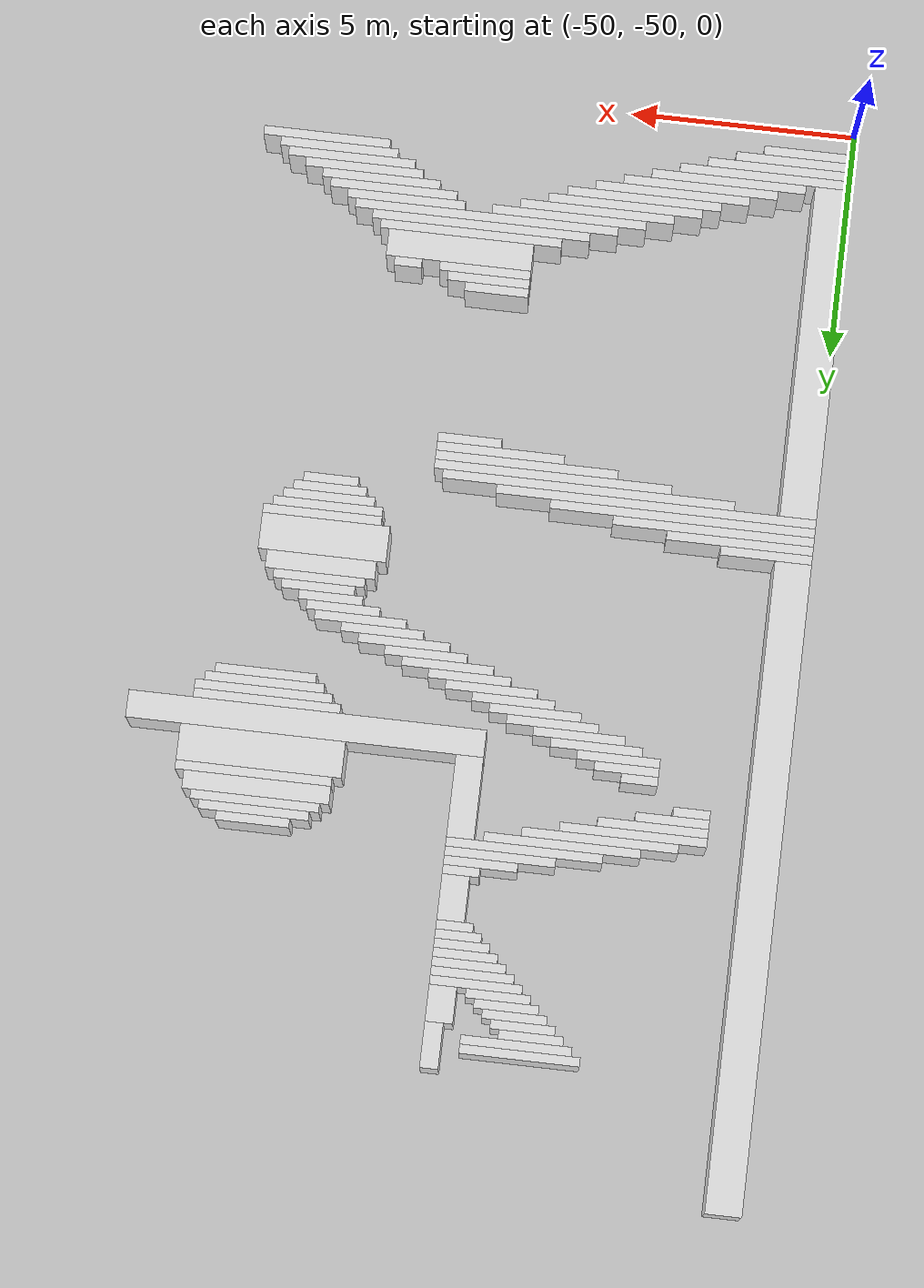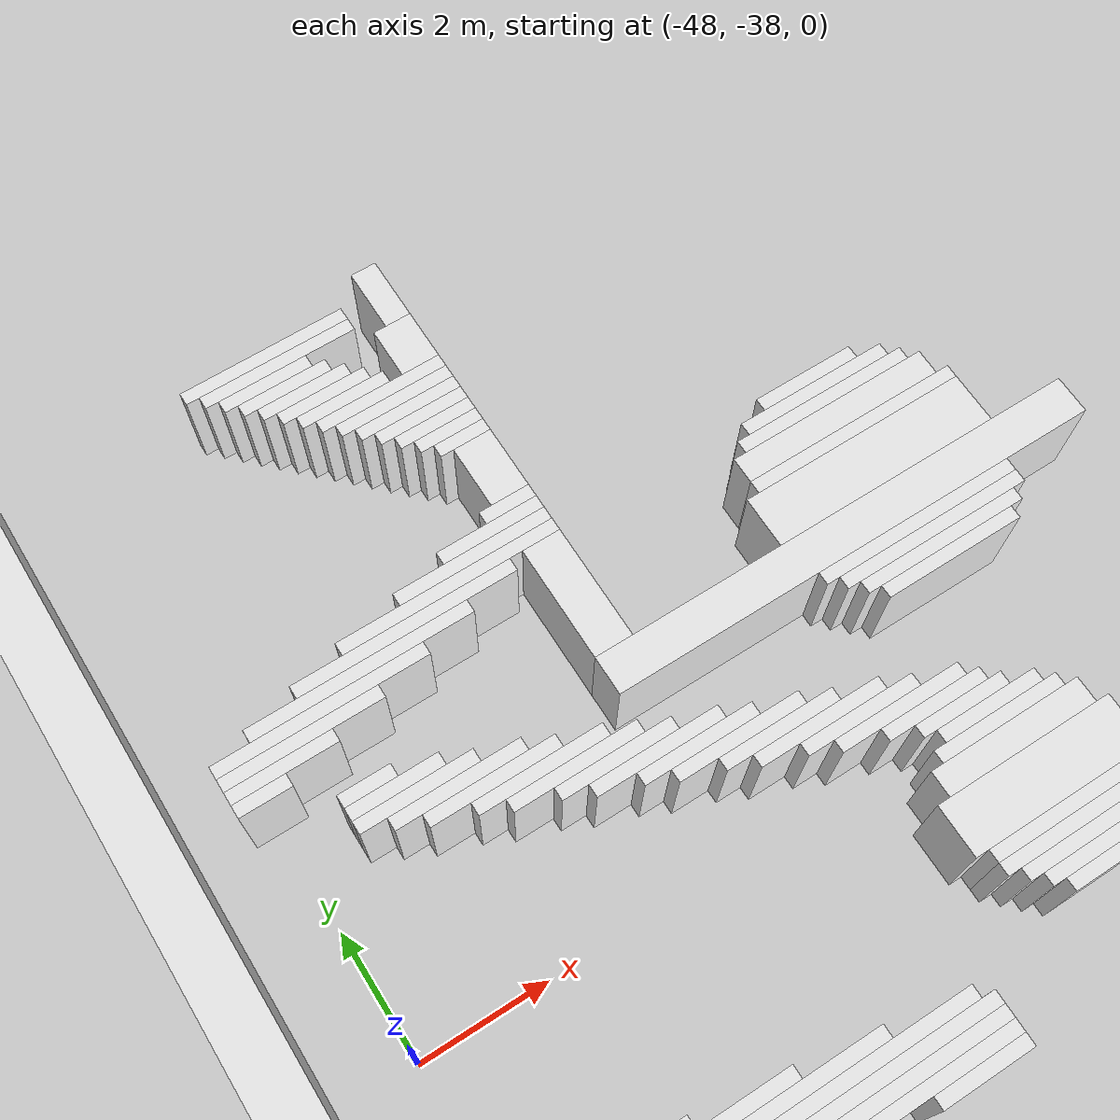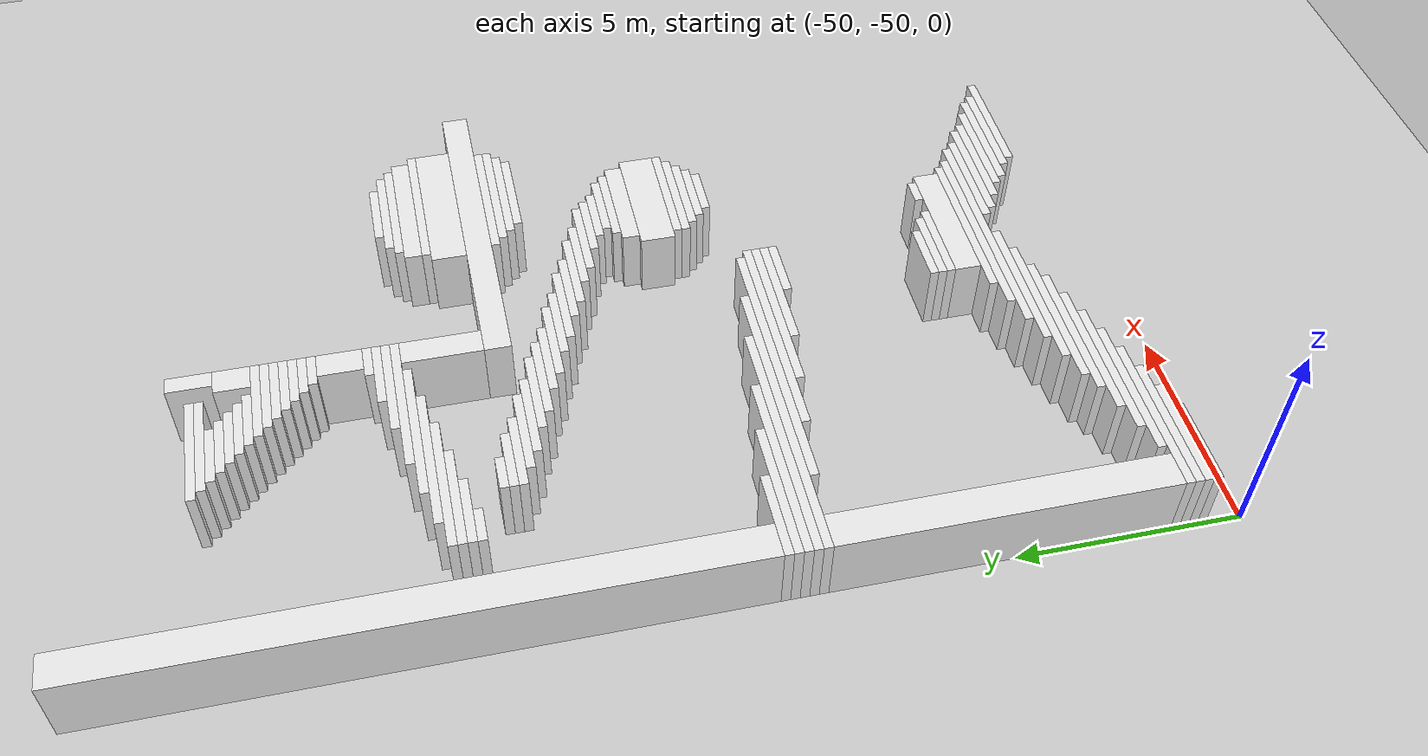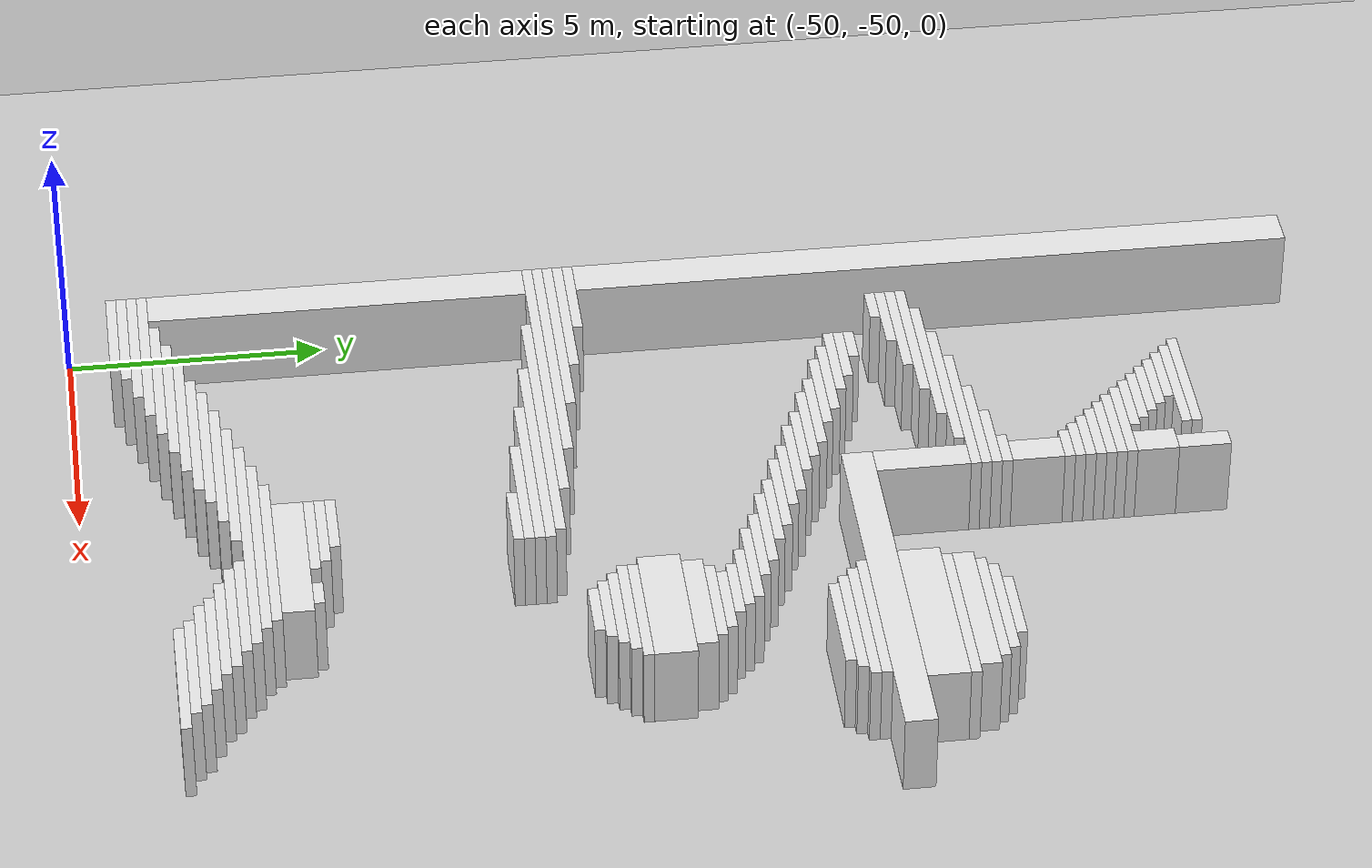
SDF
<sdf version="1.7">
 <world name="default">
  <model name="ground_plane">
   <static>1</static>
   <link name="link">
    <collision name="collision">
     <geometry><plane><normal>0 0 1</normal><size>120 120</size></plane></geometry>
    </collision>
    <visual name="visual">
     <geometry><plane><normal>0 0 1</normal><size>120 120</size></plane></geometry>
     <material>
      <script><uri>file://media/materials/scripts/gazebo.material</uri><name>Gazebo/Grey</name></script>
     </material>
    </visual>
   </link>
  </model>
  <model name="random_complex_01_model">
   <static>1</static>
   <link name="obs_2888">
    <pose>-44.9000 -28.7000 0.8000 0 0 0</pose>
    <collision name="obs_2888_col"><geometry><box><size>2.6000 0.2000 1.6000</size></box></geometry></collision>
    <visual name="obs_2888_vis">
     <geometry><box><size>2.6000 0.2000 1.6000</size></box></geometry>
     <material>
      <script><uri>file://media/materials/scripts/gazebo.material</uri><name>Gazebo/White</name></script>
     </material>
    </visual>
   </link>
   <link name="obs_2898">
    <pose>-44.8000 -28.9000 0.8000 0 0 0</pose>
    <collision name="obs_2898_col"><geometry><box><size>2.4000 0.2000 1.6000</size></box></geometry></collision>
    <visual name="obs_2898_vis">
     <geometry><box><size>2.4000 0.2000 1.6000</size></box></geometry>
     <material>
      <script><uri>file://media/materials/scripts/gazebo.material</uri><name>Gazebo/White</name></script>
     </material>
    </visual>
   </link>
   <link name="obs_2903">
    <pose>-43.0000 -28.7000 0.8000 0 0 0</pose>
    <collision name="obs_2903_col"><geometry><box><size>0.4000 1.0000 1.6000</size></box></geometry></collision>
    <visual name="obs_2903_vis">
     <geometry><box><size>0.4000 1.0000 1.6000</size></box></geometry>
     <material>
      <script><uri>file://media/materials/scripts/gazebo.material</uri><name>Gazebo/White</name></script>
     </material>
    </visual>
   </link>
   <link name="obs_2904">
    <pose>-45.1000 -29.1000 0.8000 0 0 0</pose>
    <collision name="obs_2904_col"><geometry><box><size>1.4000 0.2000 1.6000</size></box></geometry></collision>
    <visual name="obs_2904_vis">
     <geometry><box><size>1.4000 0.2000 1.6000</size></box></geometry>
     <material>
      <script><uri>file://media/materials/scripts/gazebo.material</uri><name>Gazebo/White</name></script>
     </material>
    </visual>
   </link>
   <link name="obs_2911">
    <pose>-44.9000 -29.3000 0.8000 0 0 0</pose>
    <collision name="obs_2911_col"><geometry><box><size>1.4000 0.2000 1.6000</size></box></geometry></collision>
    <visual name="obs_2911_vis">
     <geometry><box><size>1.4000 0.2000 1.6000</size></box></geometry>
     <material>
      <script><uri>file://media/materials/scripts/gazebo.material</uri><name>Gazebo/White</name></script>
     </material>
    </visual>
   </link>
   <link name="obs_2916">
    <pose>-44.7000 -29.5000 0.8000 0 0 0</pose>
    <collision name="obs_2916_col"><geometry><box><size>1.4000 0.2000 1.6000</size></box></geometry></collision>
    <visual name="obs_2916_vis">
     <geometry><box><size>1.4000 0.2000 1.6000</size></box></geometry>
     <material>
      <script><uri>file://media/materials/scripts/gazebo.material</uri><name>Gazebo/White</name></script>
     </material>
    </visual>
   </link>
   <link name="obs_2923">
    <pose>-44.5000 -29.7000 0.8000 0 0 0</pose>
    <collision name="obs_2923_col"><geometry><box><size>1.4000 0.2000 1.6000</size></box></geometry></collision>
    <visual name="obs_2923_vis">
     <geometry><box><size>1.4000 0.2000 1.6000</size></box></geometry>
     <material>
      <script><uri>file://media/materials/scripts/gazebo.material</uri><name>Gazebo/White</name></script>
     </material>
    </visual>
   </link>
   <link name="obs_2929">
    <pose>-43.1000 -29.6000 0.8000 0 0 0</pose>
    <collision name="obs_2929_col"><geometry><box><size>0.6000 0.8000 1.6000</size></box></geometry></collision>
    <visual name="obs_2929_vis">
     <geometry><box><size>0.6000 0.8000 1.6000</size></box></geometry>
     <material>
      <script><uri>file://media/materials/scripts/gazebo.material</uri><name>Gazebo/White</name></script>
     </material>
    </visual>
   </link>
   <link name="obs_2930">
    <pose>-44.3000 -29.9000 0.8000 0 0 0</pose>
    <collision name="obs_2930_col"><geometry><box><size>1.4000 0.2000 1.6000</size></box></geometry></collision>
    <visual name="obs_2930_vis">
     <geometry><box><size>1.4000 0.2000 1.6000</size></box></geometry>
     <material>
      <script><uri>file://media/materials/scripts/gazebo.material</uri><name>Gazebo/White</name></script>
     </material>
    </visual>
   </link>
   <link name="obs_2937">
    <pose>-43.8000 -30.1000 0.8000 0 0 0</pose>
    <collision name="obs_2937_col"><geometry><box><size>2.0000 0.2000 1.6000</size></box></geometry></collision>
    <visual name="obs_2937_vis">
     <geometry><box><size>2.0000 0.2000 1.6000</size></box></geometry>
     <material>
      <script><uri>file://media/materials/scripts/gazebo.material</uri><name>Gazebo/White</name></script>
     </material>
    </visual>
   </link>
   <link name="obs_2943">
    <pose>-43.7000 -30.3000 0.8000 0 0 0</pose>
    <collision name="obs_2943_col"><geometry><box><size>1.8000 0.2000 1.6000</size></box></geometry></collision>
    <visual name="obs_2943_vis">
     <geometry><box><size>1.8000 0.2000 1.6000</size></box></geometry>
     <material>
      <script><uri>file://media/materials/scripts/gazebo.material</uri><name>Gazebo/White</name></script>
     </material>
    </visual>
   </link>
   <link name="obs_2949">
    <pose>-43.6000 -30.5000 0.8000 0 0 0</pose>
    <collision name="obs_2949_col"><geometry><box><size>1.6000 0.2000 1.6000</size></box></geometry></collision>
    <visual name="obs_2949_vis">
     <geometry><box><size>1.6000 0.2000 1.6000</size></box></geometry>
     <material>
      <script><uri>file://media/materials/scripts/gazebo.material</uri><name>Gazebo/White</name></script>
     </material>
    </visual>
   </link>
   <link name="obs_2956">
    <pose>-43.5000 -30.7000 0.8000 0 0 0</pose>
    <collision name="obs_2956_col"><geometry><box><size>1.4000 0.2000 1.6000</size></box></geometry></collision>
    <visual name="obs_2956_vis">
     <geometry><box><size>1.4000 0.2000 1.6000</size></box></geometry>
     <material>
      <script><uri>file://media/materials/scripts/gazebo.material</uri><name>Gazebo/White</name></script>
     </material>
    </visual>
   </link>
   <link name="obs_2963">
    <pose>-43.4000 -30.9000 0.8000 0 0 0</pose>
    <collision name="obs_2963_col"><geometry><box><size>1.2000 0.2000 1.6000</size></box></geometry></collision>
    <visual name="obs_2963_vis">
     <geometry><box><size>1.2000 0.2000 1.6000</size></box></geometry>
     <material>
      <script><uri>file://media/materials/scripts/gazebo.material</uri><name>Gazebo/White</name></script>
     </material>
    </visual>
   </link>
   <link name="obs_2969">
    <pose>-43.3000 -31.1000 0.8000 0 0 0</pose>
    <collision name="obs_2969_col"><geometry><box><size>1.0000 0.2000 1.6000</size></box></geometry></collision>
    <visual name="obs_2969_vis">
     <geometry><box><size>1.0000 0.2000 1.6000</size></box></geometry>
     <material>
      <script><uri>file://media/materials/scripts/gazebo.material</uri><name>Gazebo/White</name></script>
     </material>
    </visual>
   </link>
   <link name="obs_2976">
    <pose>-43.2000 -31.3000 0.8000 0 0 0</pose>
    <collision name="obs_2976_col"><geometry><box><size>0.8000 0.2000 1.6000</size></box></geometry></collision>
    <visual name="obs_2976_vis">
     <geometry><box><size>0.8000 0.2000 1.6000</size></box></geometry>
     <material>
      <script><uri>file://media/materials/scripts/gazebo.material</uri><name>Gazebo/White</name></script>
     </material>
    </visual>
   </link>
   <link name="obs_3005">
    <pose>-43.1000 -31.9000 0.8000 0 0 0</pose>
    <collision name="obs_3005_col"><geometry><box><size>0.6000 1.0000 1.6000</size></box></geometry></collision>
    <visual name="obs_3005_vis">
     <geometry><box><size>0.6000 1.0000 1.6000</size></box></geometry>
     <material>
      <script><uri>file://media/materials/scripts/gazebo.material</uri><name>Gazebo/White</name></script>
     </material>
    </visual>
   </link>
   <link name="obs_3014">
    <pose>-43.2000 -32.5000 0.8000 0 0 0</pose>
    <collision name="obs_3014_col"><geometry><box><size>0.8000 0.2000 1.6000</size></box></geometry></collision>
    <visual name="obs_3014_vis">
     <geometry><box><size>0.8000 0.2000 1.6000</size></box></geometry>
     <material>
      <script><uri>file://media/materials/scripts/gazebo.material</uri><name>Gazebo/White</name></script>
     </material>
    </visual>
   </link>
   <link name="obs_3021">
    <pose>-43.6000 -32.7000 0.8000 0 0 0</pose>
    <collision name="obs_3021_col"><geometry><box><size>1.6000 0.2000 1.6000</size></box></geometry></collision>
    <visual name="obs_3021_vis">
     <geometry><box><size>1.6000 0.2000 1.6000</size></box></geometry>
     <material>
      <script><uri>file://media/materials/scripts/gazebo.material</uri><name>Gazebo/White</name></script>
     </material>
    </visual>
   </link>
   <link name="obs_3030">
    <pose>-44.0000 -32.9000 0.8000 0 0 0</pose>
    <collision name="obs_3030_col"><geometry><box><size>2.4000 0.2000 1.6000</size></box></geometry></collision>
    <visual name="obs_3030_vis">
     <geometry><box><size>2.4000 0.2000 1.6000</size></box></geometry>
     <material>
      <script><uri>file://media/materials/scripts/gazebo.material</uri><name>Gazebo/White</name></script>
     </material>
    </visual>
   </link>
   <link name="obs_3037">
    <pose>-44.5000 -33.1000 0.8000 0 0 0</pose>
    <collision name="obs_3037_col"><geometry><box><size>3.4000 0.2000 1.6000</size></box></geometry></collision>
    <visual name="obs_3037_vis">
     <geometry><box><size>3.4000 0.2000 1.6000</size></box></geometry>
     <material>
      <script><uri>file://media/materials/scripts/gazebo.material</uri><name>Gazebo/White</name></script>
     </material>
    </visual>
   </link>
   <link name="obs_3038">
    <pose>-38.6000 -33.1000 0.8000 0 0 0</pose>
    <collision name="obs_3038_col"><geometry><box><size>1.6000 0.2000 1.6000</size></box></geometry></collision>
    <visual name="obs_3038_vis">
     <geometry><box><size>1.6000 0.2000 1.6000</size></box></geometry>
     <material>
      <script><uri>file://media/materials/scripts/gazebo.material</uri><name>Gazebo/White</name></script>
     </material>
    </visual>
   </link>
   <link name="obs_3047">
    <pose>-45.3000 -33.3000 0.8000 0 0 0</pose>
    <collision name="obs_3047_col"><geometry><box><size>3.4000 0.2000 1.6000</size></box></geometry></collision>
    <visual name="obs_3047_vis">
     <geometry><box><size>3.4000 0.2000 1.6000</size></box></geometry>
     <material>
      <script><uri>file://media/materials/scripts/gazebo.material</uri><name>Gazebo/White</name></script>
     </material>
    </visual>
   </link>
   <link name="obs_3048">
    <pose>-38.6000 -33.3000 0.8000 0 0 0</pose>
    <collision name="obs_3048_col"><geometry><box><size>2.4000 0.2000 1.6000</size></box></geometry></collision>
    <visual name="obs_3048_vis">
     <geometry><box><size>2.4000 0.2000 1.6000</size></box></geometry>
     <material>
      <script><uri>file://media/materials/scripts/gazebo.material</uri><name>Gazebo/White</name></script>
     </material>
    </visual>
   </link>
   <link name="obs_3055">
    <pose>-46.1000 -33.5000 0.8000 0 0 0</pose>
    <collision name="obs_3055_col"><geometry><box><size>3.4000 0.2000 1.6000</size></box></geometry></collision>
    <visual name="obs_3055_vis">
     <geometry><box><size>3.4000 0.2000 1.6000</size></box></geometry>
     <material>
      <script><uri>file://media/materials/scripts/gazebo.material</uri><name>Gazebo/White</name></script>
     </material>
    </visual>
   </link>
   <link name="obs_3056">
    <pose>-38.6000 -33.5000 0.8000 0 0 0</pose>
    <collision name="obs_3056_col"><geometry><box><size>2.8000 0.2000 1.6000</size></box></geometry></collision>
    <visual name="obs_3056_vis">
     <geometry><box><size>2.8000 0.2000 1.6000</size></box></geometry>
     <material>
      <script><uri>file://media/materials/scripts/gazebo.material</uri><name>Gazebo/White</name></script>
     </material>
    </visual>
   </link>
   <link name="obs_3062">
    <pose>-46.8000 -33.7000 0.8000 0 0 0</pose>
    <collision name="obs_3062_col"><geometry><box><size>3.2000 0.2000 1.6000</size></box></geometry></collision>
    <visual name="obs_3062_vis">
     <geometry><box><size>3.2000 0.2000 1.6000</size></box></geometry>
     <material>
      <script><uri>file://media/materials/scripts/gazebo.material</uri><name>Gazebo/White</name></script>
     </material>
    </visual>
   </link>
   <link name="obs_3071">
    <pose>-38.6000 -33.8000 0.8000 0 0 0</pose>
    <collision name="obs_3071_col"><geometry><box><size>3.2000 0.4000 1.6000</size></box></geometry></collision>
    <visual name="obs_3071_vis">
     <geometry><box><size>3.2000 0.4000 1.6000</size></box></geometry>
     <material>
      <script><uri>file://media/materials/scripts/gazebo.material</uri><name>Gazebo/White</name></script>
     </material>
    </visual>
   </link>
   <link name="obs_3072">
    <pose>-47.2000 -33.9000 0.8000 0 0 0</pose>
    <collision name="obs_3072_col"><geometry><box><size>2.4000 0.2000 1.6000</size></box></geometry></collision>
    <visual name="obs_3072_vis">
     <geometry><box><size>2.4000 0.2000 1.6000</size></box></geometry>
     <material>
      <script><uri>file://media/materials/scripts/gazebo.material</uri><name>Gazebo/White</name></script>
     </material>
    </visual>
   </link>
   <link name="obs_3079">
    <pose>-47.6000 -34.1000 0.8000 0 0 0</pose>
    <collision name="obs_3079_col"><geometry><box><size>1.6000 0.2000 1.6000</size></box></geometry></collision>
    <visual name="obs_3079_vis">
     <geometry><box><size>1.6000 0.2000 1.6000</size></box></geometry>
     <material>
      <script><uri>file://media/materials/scripts/gazebo.material</uri><name>Gazebo/White</name></script>
     </material>
    </visual>
   </link>
   <link name="obs_3080">
    <pose>-38.5000 -34.1000 0.8000 0 0 0</pose>
    <collision name="obs_3080_col"><geometry><box><size>3.4000 0.2000 1.6000</size></box></geometry></collision>
    <visual name="obs_3080_vis">
     <geometry><box><size>3.4000 0.2000 1.6000</size></box></geometry>
     <material>
      <script><uri>file://media/materials/scripts/gazebo.material</uri><name>Gazebo/White</name></script>
     </material>
    </visual>
   </link>
   <link name="obs_3086">
    <pose>-48.0000 -34.3000 0.8000 0 0 0</pose>
    <collision name="obs_3086_col"><geometry><box><size>0.8000 0.2000 1.6000</size></box></geometry></collision>
    <visual name="obs_3086_vis">
     <geometry><box><size>0.8000 0.2000 1.6000</size></box></geometry>
     <material>
      <script><uri>file://media/materials/scripts/gazebo.material</uri><name>Gazebo/White</name></script>
     </material>
    </visual>
   </link>
   <link name="obs_3104">
    <pose>-43.1000 -34.1000 0.8000 0 0 0</pose>
    <collision name="obs_3104_col"><geometry><box><size>0.6000 1.8000 1.6000</size></box></geometry></collision>
    <visual name="obs_3104_vis">
     <geometry><box><size>0.6000 1.8000 1.6000</size></box></geometry>
     <material>
      <script><uri>file://media/materials/scripts/gazebo.material</uri><name>Gazebo/White</name></script>
     </material>
    </visual>
   </link>
   <link name="obs_3106">
    <pose>-38.6000 -34.6000 0.8000 0 0 0</pose>
    <collision name="obs_3106_col"><geometry><box><size>3.6000 0.8000 1.6000</size></box></geometry></collision>
    <visual name="obs_3106_vis">
     <geometry><box><size>3.6000 0.8000 1.6000</size></box></geometry>
     <material>
      <script><uri>file://media/materials/scripts/gazebo.material</uri><name>Gazebo/White</name></script>
     </material>
    </visual>
   </link>
   <link name="obs_3109">
    <pose>-46.8000 -34.9000 0.8000 0 0 0</pose>
    <collision name="obs_3109_col"><geometry><box><size>0.8000 0.2000 1.6000</size></box></geometry></collision>
    <visual name="obs_3109_vis">
     <geometry><box><size>0.8000 0.2000 1.6000</size></box></geometry>
     <material>
      <script><uri>file://media/materials/scripts/gazebo.material</uri><name>Gazebo/White</name></script>
     </material>
    </visual>
   </link>
   <link name="obs_3115">
    <pose>-46.5000 -35.1000 0.8000 0 0 0</pose>
    <collision name="obs_3115_col"><geometry><box><size>1.4000 0.2000 1.6000</size></box></geometry></collision>
    <visual name="obs_3115_vis">
     <geometry><box><size>1.4000 0.2000 1.6000</size></box></geometry>
     <material>
      <script><uri>file://media/materials/scripts/gazebo.material</uri><name>Gazebo/White</name></script>
     </material>
    </visual>
   </link>
   <link name="obs_3122">
    <pose>-46.3000 -35.3000 0.8000 0 0 0</pose>
    <collision name="obs_3122_col"><geometry><box><size>1.8000 0.2000 1.6000</size></box></geometry></collision>
    <visual name="obs_3122_vis">
     <geometry><box><size>1.8000 0.2000 1.6000</size></box></geometry>
     <material>
      <script><uri>file://media/materials/scripts/gazebo.material</uri><name>Gazebo/White</name></script>
     </material>
    </visual>
   </link>
   <link name="obs_3129">
    <pose>-39.5000 -35.3000 0.8000 0 0 0</pose>
    <collision name="obs_3129_col"><geometry><box><size>7.8000 0.6000 1.6000</size></box></geometry></collision>
    <visual name="obs_3129_vis">
     <geometry><box><size>7.8000 0.6000 1.6000</size></box></geometry>
     <material>
      <script><uri>file://media/materials/scripts/gazebo.material</uri><name>Gazebo/White</name></script>
     </material>
    </visual>
   </link>
   <link name="obs_3131">
    <pose>-45.8000 -35.5000 0.8000 0 0 0</pose>
    <collision name="obs_3131_col"><geometry><box><size>2.0000 0.2000 1.6000</size></box></geometry></collision>
    <visual name="obs_3131_vis">
     <geometry><box><size>2.0000 0.2000 1.6000</size></box></geometry>
     <material>
      <script><uri>file://media/materials/scripts/gazebo.material</uri><name>Gazebo/White</name></script>
     </material>
    </visual>
   </link>
   <link name="obs_3139">
    <pose>-45.4000 -35.7000 0.8000 0 0 0</pose>
    <collision name="obs_3139_col"><geometry><box><size>2.0000 0.2000 1.6000</size></box></geometry></collision>
    <visual name="obs_3139_vis">
     <geometry><box><size>2.0000 0.2000 1.6000</size></box></geometry>
     <material>
      <script><uri>file://media/materials/scripts/gazebo.material</uri><name>Gazebo/White</name></script>
     </material>
    </visual>
   </link>
   <link name="obs_3140">
    <pose>-38.6000 -35.7000 0.8000 0 0 0</pose>
    <collision name="obs_3140_col"><geometry><box><size>3.2000 0.2000 1.6000</size></box></geometry></collision>
    <visual name="obs_3140_vis">
     <geometry><box><size>3.2000 0.2000 1.6000</size></box></geometry>
     <material>
      <script><uri>file://media/materials/scripts/gazebo.material</uri><name>Gazebo/White</name></script>
     </material>
    </visual>
   </link>
   <link name="obs_3147">
    <pose>-44.8000 -35.9000 0.8000 0 0 0</pose>
    <collision name="obs_3147_col"><geometry><box><size>2.0000 0.2000 1.6000</size></box></geometry></collision>
    <visual name="obs_3147_vis">
     <geometry><box><size>2.0000 0.2000 1.6000</size></box></geometry>
     <material>
      <script><uri>file://media/materials/scripts/gazebo.material</uri><name>Gazebo/White</name></script>
     </material>
    </visual>
   </link>
   <link name="obs_3148">
    <pose>-38.5000 -35.9000 0.8000 0 0 0</pose>
    <collision name="obs_3148_col"><geometry><box><size>3.0000 0.2000 1.6000</size></box></geometry></collision>
    <visual name="obs_3148_vis">
     <geometry><box><size>3.0000 0.2000 1.6000</size></box></geometry>
     <material>
      <script><uri>file://media/materials/scripts/gazebo.material</uri><name>Gazebo/White</name></script>
     </material>
    </visual>
   </link>
   <link name="obs_3156">
    <pose>-44.4000 -36.1000 0.8000 0 0 0</pose>
    <collision name="obs_3156_col"><geometry><box><size>2.0000 0.2000 1.6000</size></box></geometry></collision>
    <visual name="obs_3156_vis">
     <geometry><box><size>2.0000 0.2000 1.6000</size></box></geometry>
     <material>
      <script><uri>file://media/materials/scripts/gazebo.material</uri><name>Gazebo/White</name></script>
     </material>
    </visual>
   </link>
   <link name="obs_3157">
    <pose>-38.5000 -36.1000 0.8000 0 0 0</pose>
    <collision name="obs_3157_col"><geometry><box><size>2.6000 0.2000 1.6000</size></box></geometry></collision>
    <visual name="obs_3157_vis">
     <geometry><box><size>2.6000 0.2000 1.6000</size></box></geometry>
     <material>
      <script><uri>file://media/materials/scripts/gazebo.material</uri><name>Gazebo/White</name></script>
     </material>
    </visual>
   </link>
   <link name="obs_3162">
    <pose>-43.9000 -36.3000 0.8000 0 0 0</pose>
    <collision name="obs_3162_col"><geometry><box><size>1.8000 0.2000 1.6000</size></box></geometry></collision>
    <visual name="obs_3162_vis">
     <geometry><box><size>1.8000 0.2000 1.6000</size></box></geometry>
     <material>
      <script><uri>file://media/materials/scripts/gazebo.material</uri><name>Gazebo/White</name></script>
     </material>
    </visual>
   </link>
   <link name="obs_3163">
    <pose>-38.5000 -36.3000 0.8000 0 0 0</pose>
    <collision name="obs_3163_col"><geometry><box><size>2.2000 0.2000 1.6000</size></box></geometry></collision>
    <visual name="obs_3163_vis">
     <geometry><box><size>2.2000 0.2000 1.6000</size></box></geometry>
     <material>
      <script><uri>file://media/materials/scripts/gazebo.material</uri><name>Gazebo/White</name></script>
     </material>
    </visual>
   </link>
   <link name="obs_3170">
    <pose>-43.4000 -36.5000 0.8000 0 0 0</pose>
    <collision name="obs_3170_col"><geometry><box><size>2.0000 0.2000 1.6000</size></box></geometry></collision>
    <visual name="obs_3170_vis">
     <geometry><box><size>2.0000 0.2000 1.6000</size></box></geometry>
     <material>
      <script><uri>file://media/materials/scripts/gazebo.material</uri><name>Gazebo/White</name></script>
     </material>
    </visual>
   </link>
   <link name="obs_3177">
    <pose>-42.9000 -36.7000 0.8000 0 0 0</pose>
    <collision name="obs_3177_col"><geometry><box><size>1.8000 0.2000 1.6000</size></box></geometry></collision>
    <visual name="obs_3177_vis">
     <geometry><box><size>1.8000 0.2000 1.6000</size></box></geometry>
     <material>
      <script><uri>file://media/materials/scripts/gazebo.material</uri><name>Gazebo/White</name></script>
     </material>
    </visual>
   </link>
   <link name="obs_3184">
    <pose>-42.4000 -36.9000 0.8000 0 0 0</pose>
    <collision name="obs_3184_col"><geometry><box><size>2.0000 0.2000 1.6000</size></box></geometry></collision>
    <visual name="obs_3184_vis">
     <geometry><box><size>2.0000 0.2000 1.6000</size></box></geometry>
     <material>
      <script><uri>file://media/materials/scripts/gazebo.material</uri><name>Gazebo/White</name></script>
     </material>
    </visual>
   </link>
   <link name="obs_3189">
    <pose>-41.9000 -37.1000 0.8000 0 0 0</pose>
    <collision name="obs_3189_col"><geometry><box><size>1.8000 0.2000 1.6000</size></box></geometry></collision>
    <visual name="obs_3189_vis">
     <geometry><box><size>1.8000 0.2000 1.6000</size></box></geometry>
     <material>
      <script><uri>file://media/materials/scripts/gazebo.material</uri><name>Gazebo/White</name></script>
     </material>
    </visual>
   </link>
   <link name="obs_3199">
    <pose>-41.4000 -37.3000 0.8000 0 0 0</pose>
    <collision name="obs_3199_col"><geometry><box><size>2.0000 0.2000 1.6000</size></box></geometry></collision>
    <visual name="obs_3199_vis">
     <geometry><box><size>2.0000 0.2000 1.6000</size></box></geometry>
     <material>
      <script><uri>file://media/materials/scripts/gazebo.material</uri><name>Gazebo/White</name></script>
     </material>
    </visual>
   </link>
   <link name="obs_3204">
    <pose>-40.9000 -37.5000 0.8000 0 0 0</pose>
    <collision name="obs_3204_col"><geometry><box><size>1.8000 0.2000 1.6000</size></box></geometry></collision>
    <visual name="obs_3204_vis">
     <geometry><box><size>1.8000 0.2000 1.6000</size></box></geometry>
     <material>
      <script><uri>file://media/materials/scripts/gazebo.material</uri><name>Gazebo/White</name></script>
     </material>
    </visual>
   </link>
   <link name="obs_3211">
    <pose>-40.4000 -37.7000 0.8000 0 0 0</pose>
    <collision name="obs_3211_col"><geometry><box><size>2.0000 0.2000 1.6000</size></box></geometry></collision>
    <visual name="obs_3211_vis">
     <geometry><box><size>2.0000 0.2000 1.6000</size></box></geometry>
     <material>
      <script><uri>file://media/materials/scripts/gazebo.material</uri><name>Gazebo/White</name></script>
     </material>
    </visual>
   </link>
   <link name="obs_3220">
    <pose>-40.0000 -37.9000 0.8000 0 0 0</pose>
    <collision name="obs_3220_col"><geometry><box><size>1.6000 0.2000 1.6000</size></box></geometry></collision>
    <visual name="obs_3220_vis">
     <geometry><box><size>1.6000 0.2000 1.6000</size></box></geometry>
     <material>
      <script><uri>file://media/materials/scripts/gazebo.material</uri><name>Gazebo/White</name></script>
     </material>
    </visual>
   </link>
   <link name="obs_3228">
    <pose>-39.7000 -38.1000 0.8000 0 0 0</pose>
    <collision name="obs_3228_col"><geometry><box><size>1.4000 0.2000 1.6000</size></box></geometry></collision>
    <visual name="obs_3228_vis">
     <geometry><box><size>1.4000 0.2000 1.6000</size></box></geometry>
     <material>
      <script><uri>file://media/materials/scripts/gazebo.material</uri><name>Gazebo/White</name></script>
     </material>
    </visual>
   </link>
   <link name="obs_3236">
    <pose>-39.4000 -38.3000 0.8000 0 0 0</pose>
    <collision name="obs_3236_col"><geometry><box><size>1.6000 0.2000 1.6000</size></box></geometry></collision>
    <visual name="obs_3236_vis">
     <geometry><box><size>1.6000 0.2000 1.6000</size></box></geometry>
     <material>
      <script><uri>file://media/materials/scripts/gazebo.material</uri><name>Gazebo/White</name></script>
     </material>
    </visual>
   </link>
   <link name="obs_3245">
    <pose>-39.4000 -38.5000 0.8000 0 0 0</pose>
    <collision name="obs_3245_col"><geometry><box><size>2.0000 0.2000 1.6000</size></box></geometry></collision>
    <visual name="obs_3245_vis">
     <geometry><box><size>2.0000 0.2000 1.6000</size></box></geometry>
     <material>
      <script><uri>file://media/materials/scripts/gazebo.material</uri><name>Gazebo/White</name></script>
     </material>
    </visual>
   </link>
   <link name="obs_3258">
    <pose>-39.4000 -38.8000 0.8000 0 0 0</pose>
    <collision name="obs_3258_col"><geometry><box><size>2.4000 0.4000 1.6000</size></box></geometry></collision>
    <visual name="obs_3258_vis">
     <geometry><box><size>2.4000 0.4000 1.6000</size></box></geometry>
     <material>
      <script><uri>file://media/materials/scripts/gazebo.material</uri><name>Gazebo/White</name></script>
     </material>
    </visual>
   </link>
   <link name="obs_3283">
    <pose>-39.4000 -39.4000 0.8000 0 0 0</pose>
    <collision name="obs_3283_col"><geometry><box><size>2.8000 0.8000 1.6000</size></box></geometry></collision>
    <visual name="obs_3283_vis">
     <geometry><box><size>2.8000 0.8000 1.6000</size></box></geometry>
     <material>
      <script><uri>file://media/materials/scripts/gazebo.material</uri><name>Gazebo/White</name></script>
     </material>
    </visual>
   </link>
   <link name="obs_3291">
    <pose>-49.6000 -32.9000 0.8000 0 0 0</pose>
    <collision name="obs_3291_col"><geometry><box><size>0.8000 14.2000 1.6000</size></box></geometry></collision>
    <visual name="obs_3291_vis">
     <geometry><box><size>0.8000 14.2000 1.6000</size></box></geometry>
     <material>
      <script><uri>file://media/materials/scripts/gazebo.material</uri><name>Gazebo/White</name></script>
     </material>
    </visual>
   </link>
   <link name="obs_3293">
    <pose>-39.3000 -39.9000 0.8000 0 0 0</pose>
    <collision name="obs_3293_col"><geometry><box><size>2.6000 0.2000 1.6000</size></box></geometry></collision>
    <visual name="obs_3293_vis">
     <geometry><box><size>2.6000 0.2000 1.6000</size></box></geometry>
     <material>
      <script><uri>file://media/materials/scripts/gazebo.material</uri><name>Gazebo/White</name></script>
     </material>
    </visual>
   </link>
   <link name="obs_3300">
    <pose>-49.0000 -40.1000 0.8000 0 0 0</pose>
    <collision name="obs_3300_col"><geometry><box><size>2.0000 0.2000 1.6000</size></box></geometry></collision>
    <visual name="obs_3300_vis">
     <geometry><box><size>2.0000 0.2000 1.6000</size></box></geometry>
     <material>
      <script><uri>file://media/materials/scripts/gazebo.material</uri><name>Gazebo/White</name></script>
     </material>
    </visual>
   </link>
   <link name="obs_3301">
    <pose>-39.4000 -40.1000 0.8000 0 0 0</pose>
    <collision name="obs_3301_col"><geometry><box><size>2.4000 0.2000 1.6000</size></box></geometry></collision>
    <visual name="obs_3301_vis">
     <geometry><box><size>2.4000 0.2000 1.6000</size></box></geometry>
     <material>
      <script><uri>file://media/materials/scripts/gazebo.material</uri><name>Gazebo/White</name></script>
     </material>
    </visual>
   </link>
   <link name="obs_3307">
    <pose>-48.4000 -40.3000 0.8000 0 0 0</pose>
    <collision name="obs_3307_col"><geometry><box><size>3.2000 0.2000 1.6000</size></box></geometry></collision>
    <visual name="obs_3307_vis">
     <geometry><box><size>3.2000 0.2000 1.6000</size></box></geometry>
     <material>
      <script><uri>file://media/materials/scripts/gazebo.material</uri><name>Gazebo/White</name></script>
     </material>
    </visual>
   </link>
   <link name="obs_3308">
    <pose>-39.4000 -40.3000 0.8000 0 0 0</pose>
    <collision name="obs_3308_col"><geometry><box><size>2.0000 0.2000 1.6000</size></box></geometry></collision>
    <visual name="obs_3308_vis">
     <geometry><box><size>2.0000 0.2000 1.6000</size></box></geometry>
     <material>
      <script><uri>file://media/materials/scripts/gazebo.material</uri><name>Gazebo/White</name></script>
     </material>
    </visual>
   </link>
   <link name="obs_3316">
    <pose>-47.8000 -40.5000 0.8000 0 0 0</pose>
    <collision name="obs_3316_col"><geometry><box><size>4.4000 0.2000 1.6000</size></box></geometry></collision>
    <visual name="obs_3316_vis">
     <geometry><box><size>4.4000 0.2000 1.6000</size></box></geometry>
     <material>
      <script><uri>file://media/materials/scripts/gazebo.material</uri><name>Gazebo/White</name></script>
     </material>
    </visual>
   </link>
   <link name="obs_3317">
    <pose>-39.4000 -40.5000 0.8000 0 0 0</pose>
    <collision name="obs_3317_col"><geometry><box><size>1.6000 0.2000 1.6000</size></box></geometry></collision>
    <visual name="obs_3317_vis">
     <geometry><box><size>1.6000 0.2000 1.6000</size></box></geometry>
     <material>
      <script><uri>file://media/materials/scripts/gazebo.material</uri><name>Gazebo/White</name></script>
     </material>
    </visual>
   </link>
   <link name="obs_3323">
    <pose>-47.1000 -40.7000 0.8000 0 0 0</pose>
    <collision name="obs_3323_col"><geometry><box><size>5.8000 0.2000 1.6000</size></box></geometry></collision>
    <visual name="obs_3323_vis">
     <geometry><box><size>5.8000 0.2000 1.6000</size></box></geometry>
     <material>
      <script><uri>file://media/materials/scripts/gazebo.material</uri><name>Gazebo/White</name></script>
     </material>
    </visual>
   </link>
   <link name="obs_3324">
    <pose>-39.4000 -40.7000 0.8000 0 0 0</pose>
    <collision name="obs_3324_col"><geometry><box><size>1.2000 0.2000 1.6000</size></box></geometry></collision>
    <visual name="obs_3324_vis">
     <geometry><box><size>1.2000 0.2000 1.6000</size></box></geometry>
     <material>
      <script><uri>file://media/materials/scripts/gazebo.material</uri><name>Gazebo/White</name></script>
     </material>
    </visual>
   </link>
   <link name="obs_3334">
    <pose>-46.5000 -40.9000 0.8000 0 0 0</pose>
    <collision name="obs_3334_col"><geometry><box><size>7.0000 0.2000 1.6000</size></box></geometry></collision>
    <visual name="obs_3334_vis">
     <geometry><box><size>7.0000 0.2000 1.6000</size></box></geometry>
     <material>
      <script><uri>file://media/materials/scripts/gazebo.material</uri><name>Gazebo/White</name></script>
     </material>
    </visual>
   </link>
   <link name="obs_3341">
    <pose>-45.0000 -41.1000 0.8000 0 0 0</pose>
    <collision name="obs_3341_col"><geometry><box><size>6.4000 0.2000 1.6000</size></box></geometry></collision>
    <visual name="obs_3341_vis">
     <geometry><box><size>6.4000 0.2000 1.6000</size></box></geometry>
     <material>
      <script><uri>file://media/materials/scripts/gazebo.material</uri><name>Gazebo/White</name></script>
     </material>
    </visual>
   </link>
   <link name="obs_3349">
    <pose>-44.2000 -41.3000 0.8000 0 0 0</pose>
    <collision name="obs_3349_col"><geometry><box><size>5.2000 0.2000 1.6000</size></box></geometry></collision>
    <visual name="obs_3349_vis">
     <geometry><box><size>5.2000 0.2000 1.6000</size></box></geometry>
     <material>
      <script><uri>file://media/materials/scripts/gazebo.material</uri><name>Gazebo/White</name></script>
     </material>
    </visual>
   </link>
   <link name="obs_3357">
    <pose>-43.6000 -41.5000 0.8000 0 0 0</pose>
    <collision name="obs_3357_col"><geometry><box><size>4.0000 0.2000 1.6000</size></box></geometry></collision>
    <visual name="obs_3357_vis">
     <geometry><box><size>4.0000 0.2000 1.6000</size></box></geometry>
     <material>
      <script><uri>file://media/materials/scripts/gazebo.material</uri><name>Gazebo/White</name></script>
     </material>
    </visual>
   </link>
   <link name="obs_3363">
    <pose>-43.0000 -41.7000 0.8000 0 0 0</pose>
    <collision name="obs_3363_col"><geometry><box><size>2.8000 0.2000 1.6000</size></box></geometry></collision>
    <visual name="obs_3363_vis">
     <geometry><box><size>2.8000 0.2000 1.6000</size></box></geometry>
     <material>
      <script><uri>file://media/materials/scripts/gazebo.material</uri><name>Gazebo/White</name></script>
     </material>
    </visual>
   </link>
   <link name="obs_3371">
    <pose>-42.3000 -41.9000 0.8000 0 0 0</pose>
    <collision name="obs_3371_col"><geometry><box><size>1.4000 0.2000 1.6000</size></box></geometry></collision>
    <visual name="obs_3371_vis">
     <geometry><box><size>1.4000 0.2000 1.6000</size></box></geometry>
     <material>
      <script><uri>file://media/materials/scripts/gazebo.material</uri><name>Gazebo/White</name></script>
     </material>
    </visual>
   </link>
   <link name="obs_3481">
    <pose>-42.5000 -45.3000 0.8000 0 0 0</pose>
    <collision name="obs_3481_col"><geometry><box><size>1.4000 0.2000 1.6000</size></box></geometry></collision>
    <visual name="obs_3481_vis">
     <geometry><box><size>1.4000 0.2000 1.6000</size></box></geometry>
     <material>
      <script><uri>file://media/materials/scripts/gazebo.material</uri><name>Gazebo/White</name></script>
     </material>
    </visual>
   </link>
   <link name="obs_3489">
    <pose>-42.3000 -45.5000 0.8000 0 0 0</pose>
    <collision name="obs_3489_col"><geometry><box><size>1.8000 0.2000 1.6000</size></box></geometry></collision>
    <visual name="obs_3489_vis">
     <geometry><box><size>1.8000 0.2000 1.6000</size></box></geometry>
     <material>
      <script><uri>file://media/materials/scripts/gazebo.material</uri><name>Gazebo/White</name></script>
     </material>
    </visual>
   </link>
   <link name="obs_3498">
    <pose>-42.2000 -45.7000 0.8000 0 0 0</pose>
    <collision name="obs_3498_col"><geometry><box><size>2.0000 0.2000 1.6000</size></box></geometry></collision>
    <visual name="obs_3498_vis">
     <geometry><box><size>2.0000 0.2000 1.6000</size></box></geometry>
     <material>
      <script><uri>file://media/materials/scripts/gazebo.material</uri><name>Gazebo/White</name></script>
     </material>
    </visual>
   </link>
   <link name="obs_3499">
    <pose>-40.5000 -45.7000 0.8000 0 0 0</pose>
    <collision name="obs_3499_col"><geometry><box><size>0.6000 0.2000 1.6000</size></box></geometry></collision>
    <visual name="obs_3499_vis">
     <geometry><box><size>0.6000 0.2000 1.6000</size></box></geometry>
     <material>
      <script><uri>file://media/materials/scripts/gazebo.material</uri><name>Gazebo/White</name></script>
     </material>
    </visual>
   </link>
   <link name="obs_3517">
    <pose>-41.6000 -46.1000 0.8000 0 0 0</pose>
    <collision name="obs_3517_col"><geometry><box><size>3.2000 0.6000 1.6000</size></box></geometry></collision>
    <visual name="obs_3517_vis">
     <geometry><box><size>3.2000 0.6000 1.6000</size></box></geometry>
     <material>
      <script><uri>file://media/materials/scripts/gazebo.material</uri><name>Gazebo/White</name></script>
     </material>
    </visual>
   </link>
   <link name="obs_3527">
    <pose>-41.8000 -46.5000 0.8000 0 0 0</pose>
    <collision name="obs_3527_col"><geometry><box><size>4.0000 0.2000 1.6000</size></box></geometry></collision>
    <visual name="obs_3527_vis">
     <geometry><box><size>4.0000 0.2000 1.6000</size></box></geometry>
     <material>
      <script><uri>file://media/materials/scripts/gazebo.material</uri><name>Gazebo/White</name></script>
     </material>
    </visual>
   </link>
   <link name="obs_3530">
    <pose>-42.0000 -46.7000 0.8000 0 0 0</pose>
    <collision name="obs_3530_col"><geometry><box><size>4.8000 0.2000 1.6000</size></box></geometry></collision>
    <visual name="obs_3530_vis">
     <geometry><box><size>4.8000 0.2000 1.6000</size></box></geometry>
     <material>
      <script><uri>file://media/materials/scripts/gazebo.material</uri><name>Gazebo/White</name></script>
     </material>
    </visual>
   </link>
   <link name="obs_3539">
    <pose>-42.1000 -46.9000 0.8000 0 0 0</pose>
    <collision name="obs_3539_col"><geometry><box><size>5.8000 0.2000 1.6000</size></box></geometry></collision>
    <visual name="obs_3539_vis">
     <geometry><box><size>5.8000 0.2000 1.6000</size></box></geometry>
     <material>
      <script><uri>file://media/materials/scripts/gazebo.material</uri><name>Gazebo/White</name></script>
     </material>
    </visual>
   </link>
   <link name="obs_3545">
    <pose>-43.9000 -47.1000 0.8000 0 0 0</pose>
    <collision name="obs_3545_col"><geometry><box><size>3.4000 0.2000 1.6000</size></box></geometry></collision>
    <visual name="obs_3545_vis">
     <geometry><box><size>3.4000 0.2000 1.6000</size></box></geometry>
     <material>
      <script><uri>file://media/materials/scripts/gazebo.material</uri><name>Gazebo/White</name></script>
     </material>
    </visual>
   </link>
   <link name="obs_3546">
    <pose>-40.3000 -47.1000 0.8000 0 0 0</pose>
    <collision name="obs_3546_col"><geometry><box><size>2.6000 0.2000 1.6000</size></box></geometry></collision>
    <visual name="obs_3546_vis">
     <geometry><box><size>2.6000 0.2000 1.6000</size></box></geometry>
     <material>
      <script><uri>file://media/materials/scripts/gazebo.material</uri><name>Gazebo/White</name></script>
     </material>
    </visual>
   </link>
   <link name="obs_3553">
    <pose>-44.5000 -47.3000 0.8000 0 0 0</pose>
    <collision name="obs_3553_col"><geometry><box><size>3.4000 0.2000 1.6000</size></box></geometry></collision>
    <visual name="obs_3553_vis">
     <geometry><box><size>3.4000 0.2000 1.6000</size></box></geometry>
     <material>
      <script><uri>file://media/materials/scripts/gazebo.material</uri><name>Gazebo/White</name></script>
     </material>
    </visual>
   </link>
   <link name="obs_3554">
    <pose>-40.0000 -47.3000 0.8000 0 0 0</pose>
    <collision name="obs_3554_col"><geometry><box><size>2.8000 0.2000 1.6000</size></box></geometry></collision>
    <visual name="obs_3554_vis">
     <geometry><box><size>2.8000 0.2000 1.6000</size></box></geometry>
     <material>
      <script><uri>file://media/materials/scripts/gazebo.material</uri><name>Gazebo/White</name></script>
     </material>
    </visual>
   </link>
   <link name="obs_3561">
    <pose>-45.1000 -47.5000 0.8000 0 0 0</pose>
    <collision name="obs_3561_col"><geometry><box><size>3.4000 0.2000 1.6000</size></box></geometry></collision>
    <visual name="obs_3561_vis">
     <geometry><box><size>3.4000 0.2000 1.6000</size></box></geometry>
     <material>
      <script><uri>file://media/materials/scripts/gazebo.material</uri><name>Gazebo/White</name></script>
     </material>
    </visual>
   </link>
   <link name="obs_3562">
    <pose>-39.7000 -47.5000 0.8000 0 0 0</pose>
    <collision name="obs_3562_col"><geometry><box><size>2.6000 0.2000 1.6000</size></box></geometry></collision>
    <visual name="obs_3562_vis">
     <geometry><box><size>2.6000 0.2000 1.6000</size></box></geometry>
     <material>
      <script><uri>file://media/materials/scripts/gazebo.material</uri><name>Gazebo/White</name></script>
     </material>
    </visual>
   </link>
   <link name="obs_3569">
    <pose>-45.5000 -47.7000 0.8000 0 0 0</pose>
    <collision name="obs_3569_col"><geometry><box><size>3.4000 0.2000 1.6000</size></box></geometry></collision>
    <visual name="obs_3569_vis">
     <geometry><box><size>3.4000 0.2000 1.6000</size></box></geometry>
     <material>
      <script><uri>file://media/materials/scripts/gazebo.material</uri><name>Gazebo/White</name></script>
     </material>
    </visual>
   </link>
   <link name="obs_3570">
    <pose>-39.3000 -47.7000 0.8000 0 0 0</pose>
    <collision name="obs_3570_col"><geometry><box><size>2.6000 0.2000 1.6000</size></box></geometry></collision>
    <visual name="obs_3570_vis">
     <geometry><box><size>2.6000 0.2000 1.6000</size></box></geometry>
     <material>
      <script><uri>file://media/materials/scripts/gazebo.material</uri><name>Gazebo/White</name></script>
     </material>
    </visual>
   </link>
   <link name="obs_3577">
    <pose>-46.1000 -47.9000 0.8000 0 0 0</pose>
    <collision name="obs_3577_col"><geometry><box><size>3.4000 0.2000 1.6000</size></box></geometry></collision>
    <visual name="obs_3577_vis">
     <geometry><box><size>3.4000 0.2000 1.6000</size></box></geometry>
     <material>
      <script><uri>file://media/materials/scripts/gazebo.material</uri><name>Gazebo/White</name></script>
     </material>
    </visual>
   </link>
   <link name="obs_3578">
    <pose>-39.0000 -47.9000 0.8000 0 0 0</pose>
    <collision name="obs_3578_col"><geometry><box><size>2.8000 0.2000 1.6000</size></box></geometry></collision>
    <visual name="obs_3578_vis">
     <geometry><box><size>2.8000 0.2000 1.6000</size></box></geometry>
     <material>
      <script><uri>file://media/materials/scripts/gazebo.material</uri><name>Gazebo/White</name></script>
     </material>
    </visual>
   </link>
   <link name="obs_3585">
    <pose>-46.7000 -48.1000 0.8000 0 0 0</pose>
    <collision name="obs_3585_col"><geometry><box><size>3.4000 0.2000 1.6000</size></box></geometry></collision>
    <visual name="obs_3585_vis">
     <geometry><box><size>3.4000 0.2000 1.6000</size></box></geometry>
     <material>
      <script><uri>file://media/materials/scripts/gazebo.material</uri><name>Gazebo/White</name></script>
     </material>
    </visual>
   </link>
   <link name="obs_3586">
    <pose>-38.7000 -48.1000 0.8000 0 0 0</pose>
    <collision name="obs_3586_col"><geometry><box><size>2.6000 0.2000 1.6000</size></box></geometry></collision>
    <visual name="obs_3586_vis">
     <geometry><box><size>2.6000 0.2000 1.6000</size></box></geometry>
     <material>
      <script><uri>file://media/materials/scripts/gazebo.material</uri><name>Gazebo/White</name></script>
     </material>
    </visual>
   </link>
   <link name="obs_3591">
    <pose>-49.6000 -44.7000 0.8000 0 0 0</pose>
    <collision name="obs_3591_col"><geometry><box><size>0.8000 7.4000 1.6000</size></box></geometry></collision>
    <visual name="obs_3591_vis">
     <geometry><box><size>0.8000 7.4000 1.6000</size></box></geometry>
     <material>
      <script><uri>file://media/materials/scripts/gazebo.material</uri><name>Gazebo/White</name></script>
     </material>
    </visual>
   </link>
   <link name="obs_3593">
    <pose>-47.3000 -48.3000 0.8000 0 0 0</pose>
    <collision name="obs_3593_col"><geometry><box><size>3.4000 0.2000 1.6000</size></box></geometry></collision>
    <visual name="obs_3593_vis">
     <geometry><box><size>3.4000 0.2000 1.6000</size></box></geometry>
     <material>
      <script><uri>file://media/materials/scripts/gazebo.material</uri><name>Gazebo/White</name></script>
     </material>
    </visual>
   </link>
   <link name="obs_3594">
    <pose>-38.4000 -48.3000 0.8000 0 0 0</pose>
    <collision name="obs_3594_col"><geometry><box><size>2.8000 0.2000 1.6000</size></box></geometry></collision>
    <visual name="obs_3594_vis">
     <geometry><box><size>2.8000 0.2000 1.6000</size></box></geometry>
     <material>
      <script><uri>file://media/materials/scripts/gazebo.material</uri><name>Gazebo/White</name></script>
     </material>
    </visual>
   </link>
   <link name="obs_3600">
    <pose>-48.1000 -48.5000 0.8000 0 0 0</pose>
    <collision name="obs_3600_col"><geometry><box><size>3.8000 0.2000 1.6000</size></box></geometry></collision>
    <visual name="obs_3600_vis">
     <geometry><box><size>3.8000 0.2000 1.6000</size></box></geometry>
     <material>
      <script><uri>file://media/materials/scripts/gazebo.material</uri><name>Gazebo/White</name></script>
     </material>
    </visual>
   </link>
   <link name="obs_3609">
    <pose>-48.4000 -48.7000 0.8000 0 0 0</pose>
    <collision name="obs_3609_col"><geometry><box><size>3.2000 0.2000 1.6000</size></box></geometry></collision>
    <visual name="obs_3609_vis">
     <geometry><box><size>3.2000 0.2000 1.6000</size></box></geometry>
     <material>
      <script><uri>file://media/materials/scripts/gazebo.material</uri><name>Gazebo/White</name></script>
     </material>
    </visual>
   </link>
   <link name="obs_3617">
    <pose>-48.7000 -48.9000 0.8000 0 0 0</pose>
    <collision name="obs_3617_col"><geometry><box><size>2.6000 0.2000 1.6000</size></box></geometry></collision>
    <visual name="obs_3617_vis">
     <geometry><box><size>2.6000 0.2000 1.6000</size></box></geometry>
     <material>
      <script><uri>file://media/materials/scripts/gazebo.material</uri><name>Gazebo/White</name></script>
     </material>
    </visual>
   </link>
   <link name="obs_3626">
    <pose>-49.0000 -49.1000 0.8000 0 0 0</pose>
    <collision name="obs_3626_col"><geometry><box><size>2.0000 0.2000 1.6000</size></box></geometry></collision>
    <visual name="obs_3626_vis">
     <geometry><box><size>2.0000 0.2000 1.6000</size></box></geometry>
     <material>
      <script><uri>file://media/materials/scripts/gazebo.material</uri><name>Gazebo/White</name></script>
     </material>
    </visual>
   </link>
  </model>
 </world>
</sdf>
